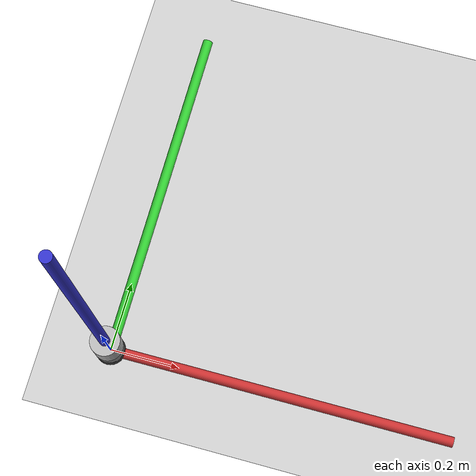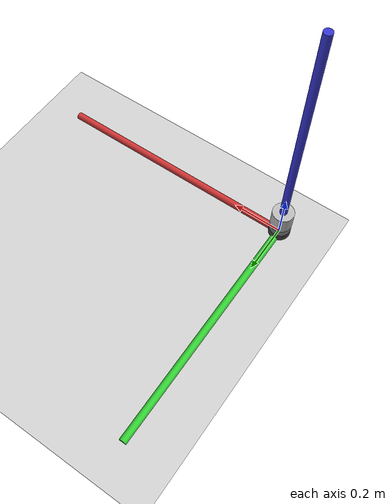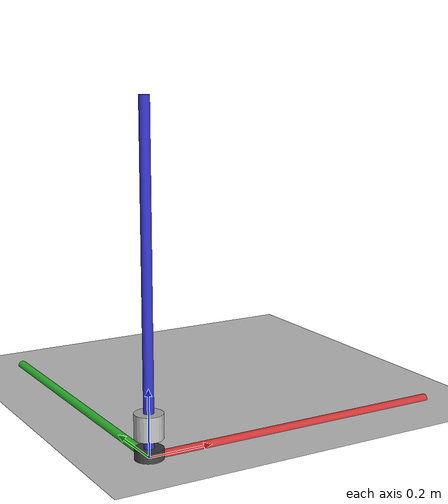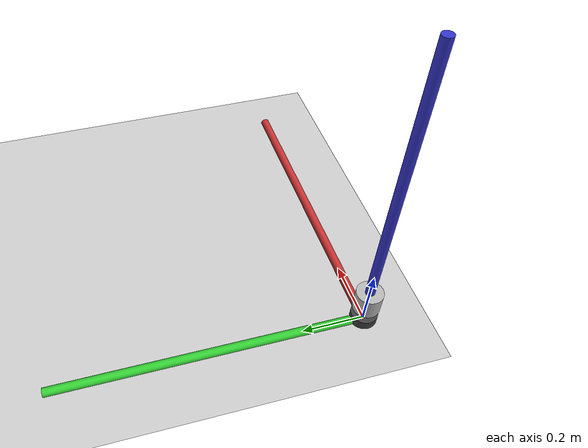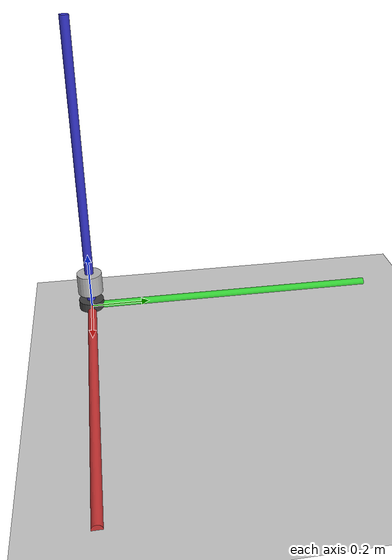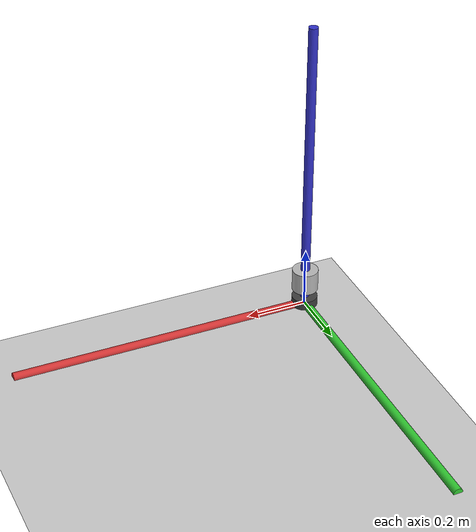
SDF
<sdf version="1.5">
 <world name="default">
  <physics type="ode">
   <max_step_size>0.0000100</max_step_size>
   <real_time_update_rate>100000.000000</real_time_update_rate>
   <real_time_factor>1.000000</real_time_factor>
   <gravity>0.000000 0.000000 0.0000</gravity>
  </physics>
  <plugin name="joint_velocity_controller" filename="./libjoint_velocity_controller.so">
   <updateRate>50.0</updateRate>
   <jointName>x_joint</jointName>
  </plugin>
  <include><uri>model://sun</uri></include>
  <include><uri>model://ground_plane</uri></include>
  <model name="my_velodyne">
   <link name="base">
    <inertial><mass>100000.0</mass></inertial>
    <collision name="base_collision">
     <geometry><cylinder><radius>.04267</radius><length>.05867</length></cylinder></geometry>
    </collision>
    <visual name="base_visual">
     <geometry><cylinder><radius>.04267</radius><length>.05867</length></cylinder></geometry>
     <material><ambient>0.25 0.25 0.25 1</ambient></material>
    </visual>
   </link>
   <joint name="x_joint" type="prismatic">
    <parent link="world"/>
    <child link="base"/>
    <origin xyz="0 0 0" rpy="0 0 0"/>
    <axis xyz="1 0 0"/>
   </joint>
   <link name="top">
    <pose>0 0 0.095455 0 0 0</pose>
    <inertial>
     <mass>0.1</mass>
     <inertia>
      <ixx>0.000090623</ixx>
      <iyy>0.000090623</iyy>
      <izz>0.000091036</izz>
      <ixy>0</ixy>
      <ixz>0</ixz>
      <iyz>0</iyz>
     </inertia>
    </inertial>
    <collision name="top_collision">
     <geometry><cylinder><radius>0.04267</radius><length>0.07357</length></cylinder></geometry>
    </collision>
    <visual name="top_visual">
     <geometry><cylinder><radius>0.04267</radius><length>0.07357</length></cylinder></geometry>
    </visual>
    <sensor type="ray" name="sensor">
     <pose>0 0 -0.004645 1.5707 0 0</pose>
     <visualize>true</visualize>
     <update_rate>45000</update_rate>
     <ray>
      <noise><type>gaussian</type><mean>0.0</mean><stddev>0.02</stddev></noise>
      <scan>
       <horizontal>
        <samples>16</samples>
        <resolution>4</resolution>
        <min_angle>-0.53529248</min_angle>
        <max_angle>0.18622663</max_angle>
       </horizontal>
      </scan>
      <range><min>0.25</min><max>70</max><resolution>0.01</resolution></range>
     </ray>
     <plugin name="sensor_plugin" filename="libgazebo_ros_laser.so">
      <topicName>/my_velodyne/top/sensor/scan</topicName>
      <frameName>/base</frameName>
     </plugin>
    </sensor>
   </link>
   <link name="xarrow">
    <pose>0.5 0 0 0 1.570796326 0</pose>
    <visual name="xarrow_visual">
     <geometry><cylinder><radius>.015</radius><length>1.0</length></cylinder></geometry>
     <material><ambient>0.8 0.2 0.2 1</ambient></material>
    </visual>
   </link>
   <link name="yarrow">
    <pose>0 0.5 0 1.5708 0 0</pose>
    <visual name="yarrow_visual">
     <geometry><cylinder><radius>.015</radius><length>1.0</length></cylinder></geometry>
     <material><ambient>0.2 0.8 0.2 1</ambient></material>
    </visual>
   </link>
   <link name="zarrow">
    <pose>0 0 0.5 0 0 0</pose>
    <visual name="zarrow_visual">
     <geometry><cylinder><radius>.015</radius><length>1.0</length></cylinder></geometry>
     <material><ambient>0.2 0.2 0.8 1</ambient></material>
    </visual>
   </link>
   <joint type="fixed" name="xarrow_joint"><parent>base</parent><child>x_arrow</child></joint>
   <joint type="fixed" name="zarrow_joint"><parent>base</parent><child>z_arrow</child></joint>
   <joint type="revolute" name="joint">
    <pose>0 0 -0.036785 0 0 0</pose>
    <parent>base</parent>
    <child>top</child>
    <axis><xyz>0 0 1</xyz><limit><lower>-10000000000000000</lower><upper>10000000000000000</upper></limit></axis>
   </joint>
   <plugin name="velodyne_control" filename="./libvelodyne_plugin.so"/>
  </model>
 </world>
</sdf>
